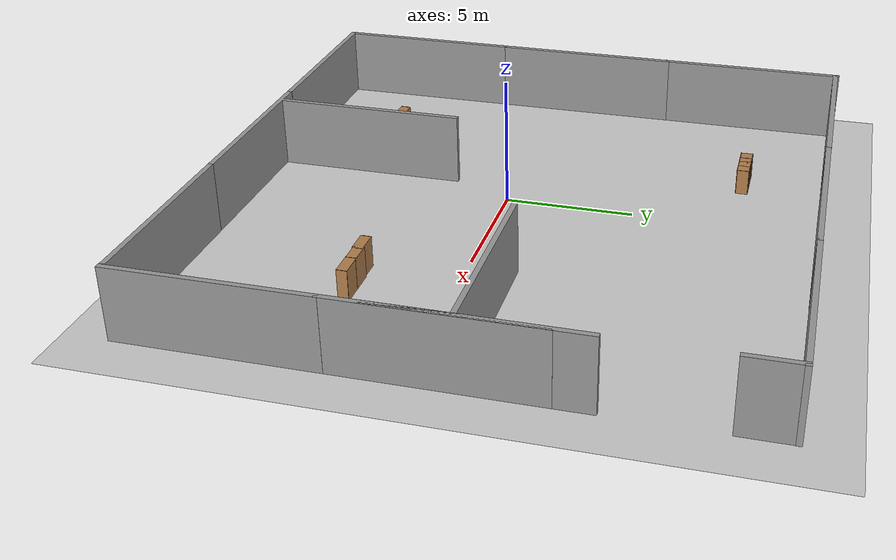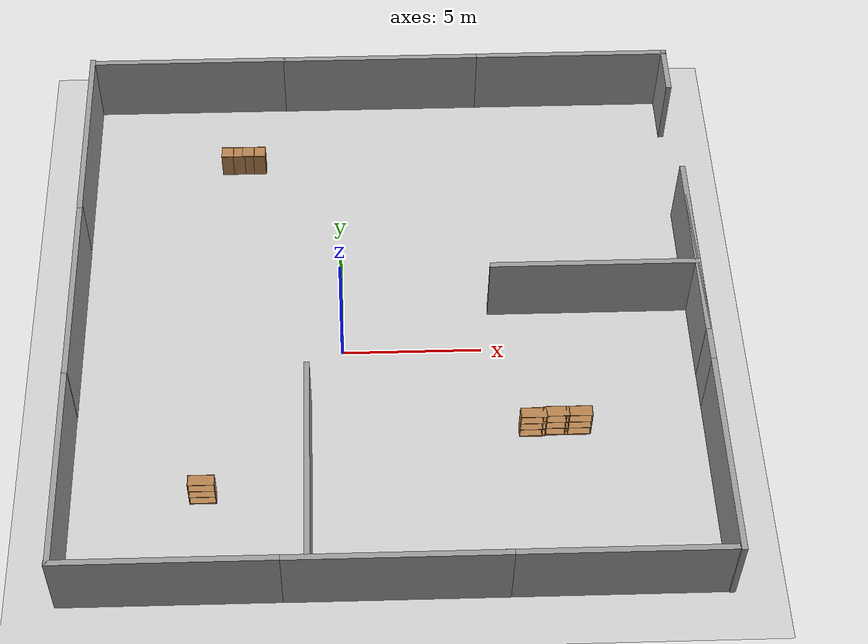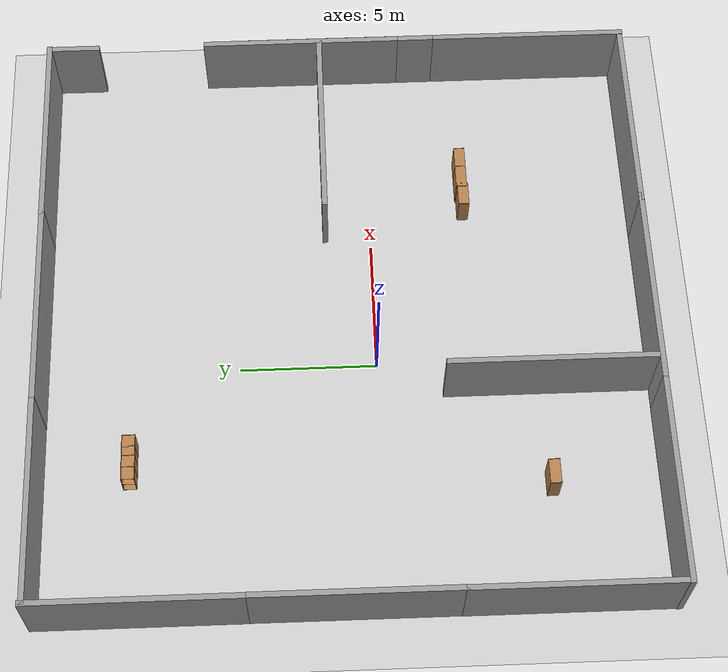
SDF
<sdf version="1.7">
 <world name="default">
  <light name="sun" type="directional">
   <pose>0 0 10 0 -0 0</pose>
   <diffuse>0.8 0.8 0.8 1</diffuse>
   <specular>0.2 0.2 0.2 1</specular>
   <attenuation>
    <range>1000</range>
    <constant>0.9</constant>
    <linear>0.01</linear>
    <quadratic>0.001</quadratic>
   </attenuation>
   <direction>-0.5 0.1 -0.9</direction>
   <spot><inner_angle>0</inner_angle><outer_angle>0</outer_angle><falloff>0</falloff></spot>
  </light>
  <model name="ground_plane">
   <static>1</static>
   <link name="link">
    <collision name="collision">
     <geometry><plane><normal>0 0 1</normal><size>100 100</size></plane></geometry>
     <surface>
      <contact><collide_bitmask>65535</collide_bitmask></contact>
      <friction><ode><mu>100</mu><mu2>50</mu2></ode></friction>
     </surface>
    </collision>
    <visual name="visual">
     <cast_shadows>0</cast_shadows>
     <geometry><plane><normal>0 0 1</normal><size>100 100</size></plane></geometry>
     <material>
      <script><uri>file://media/materials/scripts/gazebo.material</uri><name>Gazebo/Grey</name></script>
     </material>
    </visual>
   </link>
  </model>
  <gravity>0 0 -9.8</gravity>
  <magnetic_field>6e-06 2.3e-05 -4.2e-05</magnetic_field>
  <atmosphere type="adiabatic"/>
  <physics type="ode">
   <max_step_size>0.001</max_step_size>
   <real_time_factor>1</real_time_factor>
   <real_time_update_rate>1000</real_time_update_rate>
  </physics>
  <scene><ambient>0.4 0.4 0.4 1</ambient><background>0.7 0.7 0.7 1</background><shadows>1</shadows></scene>
  <spherical_coordinates>
   <surface_model>EARTH_WGS84</surface_model>
   <latitude_deg>0</latitude_deg>
   <longitude_deg>0</longitude_deg>
   <elevation>0</elevation>
   <heading_deg>0</heading_deg>
  </spherical_coordinates>
  <model name="grey_wall">
   <static>1</static>
   <link name="link">
    <pose>0 0 1.4 0 -0 0</pose>
    <collision name="collision"><geometry><box><size>7.5 0.2 2.8</size></box></geometry></collision>
    <visual name="visual">
     <cast_shadows>0</cast_shadows>
     <geometry><box><size>7.5 0.2 2.8</size></box></geometry>
     <material>
      <script>
       <uri>model://grey_wall/materials/scripts</uri>
       <uri>model://grey_wall/materials/textures</uri>
       <name>vrc/grey_wall</name>
      </script>
     </material>
    </visual>
   </link>
   <pose>-5.83386 -9.93266 0 0 -0 0</pose>
  </model>
  <model name="grey_wall_0">
   <static>1</static>
   <link name="link">
    <pose>0 0 1.4 0 -0 0</pose>
    <collision name="collision"><geometry><box><size>7.5 0.2 2.8</size></box></geometry></collision>
    <visual name="visual">
     <cast_shadows>0</cast_shadows>
     <geometry><box><size>7.5 0.2 2.8</size></box></geometry>
     <material>
      <script>
       <uri>model://grey_wall/materials/scripts</uri>
       <uri>model://grey_wall/materials/textures</uri>
       <name>vrc/grey_wall</name>
      </script>
     </material>
    </visual>
   </link>
   <pose>1.66132 -9.93778 0 0 -0 0</pose>
  </model>
  <model name="grey_wall_1">
   <static>1</static>
   <link name="link">
    <pose>0 0 1.4 0 -0 0</pose>
    <collision name="collision"><geometry><box><size>7.5 0.2 2.8</size></box></geometry></collision>
    <visual name="visual">
     <cast_shadows>0</cast_shadows>
     <geometry><box><size>7.5 0.2 2.8</size></box></geometry>
     <material>
      <script>
       <uri>model://grey_wall/materials/scripts</uri>
       <uri>model://grey_wall/materials/textures</uri>
       <name>vrc/grey_wall</name>
      </script>
     </material>
    </visual>
   </link>
   <pose>8.83643 -9.93626 0 0 -0 0</pose>
  </model>
  <model name="grey_wall_2">
   <static>1</static>
   <link name="link">
    <pose>0 0 1.4 0 -0 0</pose>
    <collision name="collision"><geometry><box><size>7.5 0.2 2.8</size></box></geometry></collision>
    <visual name="visual">
     <cast_shadows>0</cast_shadows>
     <geometry><box><size>7.5 0.2 2.8</size></box></geometry>
     <material>
      <script>
       <uri>model://grey_wall/materials/scripts</uri>
       <uri>model://grey_wall/materials/textures</uri>
       <name>vrc/grey_wall</name>
      </script>
     </material>
    </visual>
   </link>
   <pose>-5.76749 12.1097 0 0 -0 0</pose>
  </model>
  <model name="grey_wall_3">
   <static>1</static>
   <link name="link">
    <pose>0 0 1.4 0 -0 0</pose>
    <collision name="collision"><geometry><box><size>7.5 0.2 2.8</size></box></geometry></collision>
    <visual name="visual">
     <cast_shadows>0</cast_shadows>
     <geometry><box><size>7.5 0.2 2.8</size></box></geometry>
     <material>
      <script>
       <uri>model://grey_wall/materials/scripts</uri>
       <uri>model://grey_wall/materials/textures</uri>
       <name>vrc/grey_wall</name>
      </script>
     </material>
    </visual>
   </link>
   <pose>1.65848 12.1033 0 0 -0 0</pose>
  </model>
  <model name="grey_wall_4">
   <static>1</static>
   <link name="link">
    <pose>0 0 1.4 0 -0 0</pose>
    <collision name="collision"><geometry><box><size>7.5 0.2 2.8</size></box></geometry></collision>
    <visual name="visual">
     <cast_shadows>0</cast_shadows>
     <geometry><box><size>7.5 0.2 2.8</size></box></geometry>
     <material>
      <script>
       <uri>model://grey_wall/materials/scripts</uri>
       <uri>model://grey_wall/materials/textures</uri>
       <name>vrc/grey_wall</name>
      </script>
     </material>
    </visual>
   </link>
   <pose>9.03898 12.1093 0 0 -0 0</pose>
  </model>
  <model name="grey_wall_5">
   <static>1</static>
   <link name="link">
    <pose>0 0 1.4 0 -0 0</pose>
    <collision name="collision"><geometry><box><size>7.5 0.2 2.8</size></box></geometry></collision>
    <visual name="visual">
     <cast_shadows>0</cast_shadows>
     <geometry><box><size>7.5 0.2 2.8</size></box></geometry>
     <material>
      <script>
       <uri>model://grey_wall/materials/scripts</uri>
       <uri>model://grey_wall/materials/textures</uri>
       <name>vrc/grey_wall</name>
      </script>
     </material>
    </visual>
   </link>
   <pose>12.7043 2.42535 -0 0 -0 1.57075</pose>
  </model>
  <model name="grey_wall_6">
   <static>1</static>
   <link name="link">
    <pose>0 0 1.4 0 -0 0</pose>
    <collision name="collision"><geometry><box><size>7.5 0.2 2.8</size></box></geometry></collision>
    <visual name="visual">
     <cast_shadows>0</cast_shadows>
     <geometry><box><size>7.5 0.2 2.8</size></box></geometry>
     <material>
      <script>
       <uri>model://grey_wall/materials/scripts</uri>
       <uri>model://grey_wall/materials/textures</uri>
       <name>vrc/grey_wall</name>
      </script>
     </material>
    </visual>
   </link>
   <pose>12.708 1.05417 0 0 -0 1.57079</pose>
  </model>
  <model name="grey_wall_7">
   <static>1</static>
   <link name="link">
    <pose>0 0 1.4 0 -0 0</pose>
    <collision name="collision"><geometry><box><size>7.5 0.2 2.8</size></box></geometry></collision>
    <visual name="visual">
     <cast_shadows>0</cast_shadows>
     <geometry><box><size>7.5 0.2 2.8</size></box></geometry>
     <material>
      <script>
       <uri>model://grey_wall/materials/scripts</uri>
       <uri>model://grey_wall/materials/textures</uri>
       <name>vrc/grey_wall</name>
      </script>
     </material>
    </visual>
   </link>
   <pose>-9.46758 -6.23274 0 0 -0 1.57079</pose>
  </model>
  <model name="grey_wall_8">
   <static>1</static>
   <link name="link">
    <pose>0 0 1.4 0 -0 0</pose>
    <collision name="collision"><geometry><box><size>7.5 0.2 2.8</size></box></geometry></collision>
    <visual name="visual">
     <cast_shadows>0</cast_shadows>
     <geometry><box><size>7.5 0.2 2.8</size></box></geometry>
     <material>
      <script>
       <uri>model://grey_wall/materials/scripts</uri>
       <uri>model://grey_wall/materials/textures</uri>
       <name>vrc/grey_wall</name>
      </script>
     </material>
    </visual>
   </link>
   <pose>-9.45899 1.17139 0 0 -0 1.57079</pose>
  </model>
  <model name="grey_wall_9">
   <static>1</static>
   <link name="link">
    <pose>0 0 1.4 0 -0 0</pose>
    <collision name="collision"><geometry><box><size>7.5 0.2 2.8</size></box></geometry></collision>
    <visual name="visual">
     <cast_shadows>0</cast_shadows>
     <geometry><box><size>7.5 0.2 2.8</size></box></geometry>
     <material>
      <script>
       <uri>model://grey_wall/materials/scripts</uri>
       <uri>model://grey_wall/materials/textures</uri>
       <name>vrc/grey_wall</name>
      </script>
     </material>
    </visual>
   </link>
   <pose>-9.46541 8.51896 0 0 -0 1.57079</pose>
  </model>
  <model name="grey_wall_10">
   <static>1</static>
   <link name="link">
    <pose>0 0 1.4 0 -0 0</pose>
    <collision name="collision"><geometry><box><size>7.5 0.2 2.8</size></box></geometry></collision>
    <visual name="visual">
     <cast_shadows>0</cast_shadows>
     <geometry><box><size>7.5 0.2 2.8</size></box></geometry>
     <material>
      <script>
       <uri>model://grey_wall/materials/scripts</uri>
       <uri>model://grey_wall/materials/textures</uri>
       <name>vrc/grey_wall</name>
      </script>
     </material>
    </visual>
   </link>
   <pose>12.71 -6.30606 0 0 -0 1.57079</pose>
  </model>
  <model name="grey_wall_11">
   <static>1</static>
   <link name="link">
    <pose>0 0 1.4 0 -0 0</pose>
    <collision name="collision"><geometry><box><size>7.5 0.2 2.8</size></box></geometry></collision>
    <visual name="visual">
     <cast_shadows>0</cast_shadows>
     <geometry><box><size>7.5 0.2 2.8</size></box></geometry>
     <material>
      <script>
       <uri>model://grey_wall/materials/scripts</uri>
       <uri>model://grey_wall/materials/textures</uri>
       <name>vrc/grey_wall</name>
      </script>
     </material>
    </visual>
   </link>
   <pose>9.05696 1.71969 0 0 -0 0</pose>
  </model>
  <model name="grey_wall_12">
   <static>1</static>
   <link name="link">
    <pose>0 0 1.4 0 -0 0</pose>
    <collision name="collision"><geometry><box><size>7.5 0.2 2.8</size></box></geometry></collision>
    <visual name="visual">
     <cast_shadows>0</cast_shadows>
     <geometry><box><size>7.5 0.2 2.8</size></box></geometry>
     <material>
      <script>
       <uri>model://grey_wall/materials/scripts</uri>
       <uri>model://grey_wall/materials/textures</uri>
       <name>vrc/grey_wall</name>
      </script>
     </material>
    </visual>
   </link>
   <pose>-1.22257 -6.10105 0 0 -0 1.57079</pose>
  </model>
  <model name="bookshelf">
   <static>1</static>
   <link name="link">
    <inertial><mass>1</mass></inertial>
    <collision name="back">
     <pose>0 0.005 0.6 0 -0 0</pose>
     <geometry><box><size>0.9 0.01 1.2</size></box></geometry>
    </collision>
    <visual name="visual1">
     <pose>0 0.005 0.6 0 -0 0</pose>
     <geometry><box><size>0.9 0.01 1.2</size></box></geometry>
     <material>
      <script><uri>file://media/materials/scripts/gazebo.material</uri><name>Gazebo/Wood</name></script>
     </material>
    </visual>
    <collision name="left_side">
     <pose>0.45 -0.195 0.6 0 -0 0</pose>
     <geometry><box><size>0.02 0.4 1.2</size></box></geometry>
    </collision>
    <visual name="visual2">
     <pose>0.45 -0.195 0.6 0 -0 0</pose>
     <geometry><box><size>0.02 0.4 1.2</size></box></geometry>
     <material>
      <script><uri>file://media/materials/scripts/gazebo.material</uri><name>Gazebo/Wood</name></script>
     </material>
    </visual>
    <collision name="right_side">
     <pose>-0.45 -0.195 0.6 0 -0 0</pose>
     <geometry><box><size>0.02 0.4 1.2</size></box></geometry>
    </collision>
    <visual name="visual3">
     <pose>-0.45 -0.195 0.6 0 -0 0</pose>
     <geometry><box><size>0.02 0.4 1.2</size></box></geometry>
     <material>
      <script><uri>file://media/materials/scripts/gazebo.material</uri><name>Gazebo/Wood</name></script>
     </material>
    </visual>
    <collision name="bottom">
     <pose>0 -0.195 0.03 0 -0 0</pose>
     <geometry><box><size>0.88 0.4 0.06</size></box></geometry>
    </collision>
    <visual name="visual4">
     <pose>0 -0.195 0.03 0 -0 0</pose>
     <geometry><box><size>0.88 0.4 0.06</size></box></geometry>
     <material>
      <script><uri>file://media/materials/scripts/gazebo.material</uri><name>Gazebo/Wood</name></script>
     </material>
    </visual>
    <collision name="top">
     <pose>0 -0.195 1.19 0 -0 0</pose>
     <geometry><box><size>0.88 0.4 0.02</size></box></geometry>
    </collision>
    <visual name="visual5">
     <pose>0 -0.195 1.19 0 -0 0</pose>
     <geometry><box><size>0.88 0.4 0.02</size></box></geometry>
     <material>
      <script><uri>file://media/materials/scripts/gazebo.material</uri><name>Gazebo/Wood</name></script>
     </material>
    </visual>
    <collision name="low_shelf">
     <pose>0 -0.195 0.43 0 -0 0</pose>
     <geometry><box><size>0.88 0.4 0.02</size></box></geometry>
    </collision>
    <visual name="visual6">
     <pose>0 -0.195 0.43 0 -0 0</pose>
     <geometry><box><size>0.88 0.4 0.02</size></box></geometry>
     <material>
      <script><uri>file://media/materials/scripts/gazebo.material</uri><name>Gazebo/Wood</name></script>
     </material>
    </visual>
    <collision name="high_shelf">
     <pose>0 -0.195 0.8 0 -0 0</pose>
     <geometry><box><size>0.88 0.4 0.02</size></box></geometry>
    </collision>
    <visual name="visual7">
     <pose>0 -0.195 0.8 0 -0 0</pose>
     <geometry><box><size>0.88 0.4 0.02</size></box></geometry>
     <material>
      <script><uri>file://media/materials/scripts/gazebo.material</uri><name>Gazebo/Wood</name></script>
     </material>
    </visual>
   </link>
   <pose>-4.83468 -5.79554 0 0 -0 0</pose>
  </model>
  <model name="bookshelf_0">
   <static>1</static>
   <link name="link">
    <inertial><mass>1</mass></inertial>
    <collision name="back">
     <pose>0 0.005 0.6 0 -0 0</pose>
     <geometry><box><size>0.9 0.01 1.2</size></box></geometry>
    </collision>
    <visual name="visual1">
     <pose>0 0.005 0.6 0 -0 0</pose>
     <geometry><box><size>0.9 0.01 1.2</size></box></geometry>
     <material>
      <script><uri>file://media/materials/scripts/gazebo.material</uri><name>Gazebo/Wood</name></script>
     </material>
    </visual>
    <collision name="left_side">
     <pose>0.45 -0.195 0.6 0 -0 0</pose>
     <geometry><box><size>0.02 0.4 1.2</size></box></geometry>
    </collision>
    <visual name="visual2">
     <pose>0.45 -0.195 0.6 0 -0 0</pose>
     <geometry><box><size>0.02 0.4 1.2</size></box></geometry>
     <material>
      <script><uri>file://media/materials/scripts/gazebo.material</uri><name>Gazebo/Wood</name></script>
     </material>
    </visual>
    <collision name="right_side">
     <pose>-0.45 -0.195 0.6 0 -0 0</pose>
     <geometry><box><size>0.02 0.4 1.2</size></box></geometry>
    </collision>
    <visual name="visual3">
     <pose>-0.45 -0.195 0.6 0 -0 0</pose>
     <geometry><box><size>0.02 0.4 1.2</size></box></geometry>
     <material>
      <script><uri>file://media/materials/scripts/gazebo.material</uri><name>Gazebo/Wood</name></script>
     </material>
    </visual>
    <collision name="bottom">
     <pose>0 -0.195 0.03 0 -0 0</pose>
     <geometry><box><size>0.88 0.4 0.06</size></box></geometry>
    </collision>
    <visual name="visual4">
     <pose>0 -0.195 0.03 0 -0 0</pose>
     <geometry><box><size>0.88 0.4 0.06</size></box></geometry>
     <material>
      <script><uri>file://media/materials/scripts/gazebo.material</uri><name>Gazebo/Wood</name></script>
     </material>
    </visual>
    <collision name="top">
     <pose>0 -0.195 1.19 0 -0 0</pose>
     <geometry><box><size>0.88 0.4 0.02</size></box></geometry>
    </collision>
    <visual name="visual5">
     <pose>0 -0.195 1.19 0 -0 0</pose>
     <geometry><box><size>0.88 0.4 0.02</size></box></geometry>
     <material>
      <script><uri>file://media/materials/scripts/gazebo.material</uri><name>Gazebo/Wood</name></script>
     </material>
    </visual>
    <collision name="low_shelf">
     <pose>0 -0.195 0.43 0 -0 0</pose>
     <geometry><box><size>0.88 0.4 0.02</size></box></geometry>
    </collision>
    <visual name="visual6">
     <pose>0 -0.195 0.43 0 -0 0</pose>
     <geometry><box><size>0.88 0.4 0.02</size></box></geometry>
     <material>
      <script><uri>file://media/materials/scripts/gazebo.material</uri><name>Gazebo/Wood</name></script>
     </material>
    </visual>
    <collision name="high_shelf">
     <pose>0 -0.195 0.8 0 -0 0</pose>
     <geometry><box><size>0.88 0.4 0.02</size></box></geometry>
    </collision>
    <visual name="visual7">
     <pose>0 -0.195 0.8 0 -0 0</pose>
     <geometry><box><size>0.88 0.4 0.02</size></box></geometry>
     <material>
      <script><uri>file://media/materials/scripts/gazebo.material</uri><name>Gazebo/Wood</name></script>
     </material>
    </visual>
   </link>
   <pose>8.15256 -3.32814 0 0 -0 0</pose>
  </model>
  <model name="bookshelf_1">
   <static>1</static>
   <link name="link">
    <inertial><mass>1</mass></inertial>
    <collision name="back">
     <pose>0 0.005 0.6 0 -0 0</pose>
     <geometry><box><size>0.9 0.01 1.2</size></box></geometry>
    </collision>
    <visual name="visual1">
     <pose>0 0.005 0.6 0 -0 0</pose>
     <geometry><box><size>0.9 0.01 1.2</size></box></geometry>
     <material>
      <script><uri>file://media/materials/scripts/gazebo.material</uri><name>Gazebo/Wood</name></script>
     </material>
    </visual>
    <collision name="left_side">
     <pose>0.45 -0.195 0.6 0 -0 0</pose>
     <geometry><box><size>0.02 0.4 1.2</size></box></geometry>
    </collision>
    <visual name="visual2">
     <pose>0.45 -0.195 0.6 0 -0 0</pose>
     <geometry><box><size>0.02 0.4 1.2</size></box></geometry>
     <material>
      <script><uri>file://media/materials/scripts/gazebo.material</uri><name>Gazebo/Wood</name></script>
     </material>
    </visual>
    <collision name="right_side">
     <pose>-0.45 -0.195 0.6 0 -0 0</pose>
     <geometry><box><size>0.02 0.4 1.2</size></box></geometry>
    </collision>
    <visual name="visual3">
     <pose>-0.45 -0.195 0.6 0 -0 0</pose>
     <geometry><box><size>0.02 0.4 1.2</size></box></geometry>
     <material>
      <script><uri>file://media/materials/scripts/gazebo.material</uri><name>Gazebo/Wood</name></script>
     </material>
    </visual>
    <collision name="bottom">
     <pose>0 -0.195 0.03 0 -0 0</pose>
     <geometry><box><size>0.88 0.4 0.06</size></box></geometry>
    </collision>
    <visual name="visual4">
     <pose>0 -0.195 0.03 0 -0 0</pose>
     <geometry><box><size>0.88 0.4 0.06</size></box></geometry>
     <material>
      <script><uri>file://media/materials/scripts/gazebo.material</uri><name>Gazebo/Wood</name></script>
     </material>
    </visual>
    <collision name="top">
     <pose>0 -0.195 1.19 0 -0 0</pose>
     <geometry><box><size>0.88 0.4 0.02</size></box></geometry>
    </collision>
    <visual name="visual5">
     <pose>0 -0.195 1.19 0 -0 0</pose>
     <geometry><box><size>0.88 0.4 0.02</size></box></geometry>
     <material>
      <script><uri>file://media/materials/scripts/gazebo.material</uri><name>Gazebo/Wood</name></script>
     </material>
    </visual>
    <collision name="low_shelf">
     <pose>0 -0.195 0.43 0 -0 0</pose>
     <geometry><box><size>0.88 0.4 0.02</size></box></geometry>
    </collision>
    <visual name="visual6">
     <pose>0 -0.195 0.43 0 -0 0</pose>
     <geometry><box><size>0.88 0.4 0.02</size></box></geometry>
     <material>
      <script><uri>file://media/materials/scripts/gazebo.material</uri><name>Gazebo/Wood</name></script>
     </material>
    </visual>
    <collision name="high_shelf">
     <pose>0 -0.195 0.8 0 -0 0</pose>
     <geometry><box><size>0.88 0.4 0.02</size></box></geometry>
    </collision>
    <visual name="visual7">
     <pose>0 -0.195 0.8 0 -0 0</pose>
     <geometry><box><size>0.88 0.4 0.02</size></box></geometry>
     <material>
      <script><uri>file://media/materials/scripts/gazebo.material</uri><name>Gazebo/Wood</name></script>
     </material>
    </visual>
   </link>
   <pose>7.35382 -3.32558 0 0 -0 0</pose>
  </model>
  <model name="bookshelf_2">
   <static>1</static>
   <link name="link">
    <inertial><mass>1</mass></inertial>
    <collision name="back">
     <pose>0 0.005 0.6 0 -0 0</pose>
     <geometry><box><size>0.9 0.01 1.2</size></box></geometry>
    </collision>
    <visual name="visual1">
     <pose>0 0.005 0.6 0 -0 0</pose>
     <geometry><box><size>0.9 0.01 1.2</size></box></geometry>
     <material>
      <script><uri>file://media/materials/scripts/gazebo.material</uri><name>Gazebo/Wood</name></script>
     </material>
    </visual>
    <collision name="left_side">
     <pose>0.45 -0.195 0.6 0 -0 0</pose>
     <geometry><box><size>0.02 0.4 1.2</size></box></geometry>
    </collision>
    <visual name="visual2">
     <pose>0.45 -0.195 0.6 0 -0 0</pose>
     <geometry><box><size>0.02 0.4 1.2</size></box></geometry>
     <material>
      <script><uri>file://media/materials/scripts/gazebo.material</uri><name>Gazebo/Wood</name></script>
     </material>
    </visual>
    <collision name="right_side">
     <pose>-0.45 -0.195 0.6 0 -0 0</pose>
     <geometry><box><size>0.02 0.4 1.2</size></box></geometry>
    </collision>
    <visual name="visual3">
     <pose>-0.45 -0.195 0.6 0 -0 0</pose>
     <geometry><box><size>0.02 0.4 1.2</size></box></geometry>
     <material>
      <script><uri>file://media/materials/scripts/gazebo.material</uri><name>Gazebo/Wood</name></script>
     </material>
    </visual>
    <collision name="bottom">
     <pose>0 -0.195 0.03 0 -0 0</pose>
     <geometry><box><size>0.88 0.4 0.06</size></box></geometry>
    </collision>
    <visual name="visual4">
     <pose>0 -0.195 0.03 0 -0 0</pose>
     <geometry><box><size>0.88 0.4 0.06</size></box></geometry>
     <material>
      <script><uri>file://media/materials/scripts/gazebo.material</uri><name>Gazebo/Wood</name></script>
     </material>
    </visual>
    <collision name="top">
     <pose>0 -0.195 1.19 0 -0 0</pose>
     <geometry><box><size>0.88 0.4 0.02</size></box></geometry>
    </collision>
    <visual name="visual5">
     <pose>0 -0.195 1.19 0 -0 0</pose>
     <geometry><box><size>0.88 0.4 0.02</size></box></geometry>
     <material>
      <script><uri>file://media/materials/scripts/gazebo.material</uri><name>Gazebo/Wood</name></script>
     </material>
    </visual>
    <collision name="low_shelf">
     <pose>0 -0.195 0.43 0 -0 0</pose>
     <geometry><box><size>0.88 0.4 0.02</size></box></geometry>
    </collision>
    <visual name="visual6">
     <pose>0 -0.195 0.43 0 -0 0</pose>
     <geometry><box><size>0.88 0.4 0.02</size></box></geometry>
     <material>
      <script><uri>file://media/materials/scripts/gazebo.material</uri><name>Gazebo/Wood</name></script>
     </material>
    </visual>
    <collision name="high_shelf">
     <pose>0 -0.195 0.8 0 -0 0</pose>
     <geometry><box><size>0.88 0.4 0.02</size></box></geometry>
    </collision>
    <visual name="visual7">
     <pose>0 -0.195 0.8 0 -0 0</pose>
     <geometry><box><size>0.88 0.4 0.02</size></box></geometry>
     <material>
      <script><uri>file://media/materials/scripts/gazebo.material</uri><name>Gazebo/Wood</name></script>
     </material>
    </visual>
   </link>
   <pose>6.57534 -3.36346 0 0 -0 0</pose>
  </model>
  <model name="cabinet">
   <static>1</static>
   <link name="cabinet_bottom_plate">
    <inertial>
     <pose>0 0 -1 0 -0 0</pose>
     <inertia><ixx>2.05</ixx><ixy>0</ixy><ixz>0</ixz><iyy>2.05</iyy><iyz>0</iyz><izz>2.05</izz></inertia>
     <mass>25</mass>
    </inertial>
    <collision name="cabinet_bottom_plate_geom">
     <pose>0 0 0.01 0 -0 0</pose>
     <geometry><box><size>0.45 0.45 0.02</size></box></geometry>
    </collision>
    <visual name="cabinet_bottom_plate_geom_visual">
     <pose>0 0 0.01 0 -0 0</pose>
     <geometry><box><size>0.45 0.45 0.02</size></box></geometry>
     <material>
      <script><uri>file://media/materials/scripts/gazebo.material</uri><name>Gazebo/Wood</name></script>
     </material>
    </visual>
    <collision name="cabinet_bottom_plate_geom_cabinet_back_plate">
     <pose>0.235 0 0.51 0 -0 0</pose>
     <geometry><box><size>0.02 0.45 1.02</size></box></geometry>
    </collision>
    <visual name="cabinet_bottom_plate_geom_cabinet_back_plate_visual">
     <pose>0.235 0 0.51 0 -0 0</pose>
     <geometry><box><size>0.02 0.45 1.02</size></box></geometry>
     <material>
      <script><uri>file://media/materials/scripts/gazebo.material</uri><name>Gazebo/Wood</name></script>
     </material>
    </visual>
    <collision name="cabinet_bottom_plate_geom_cabinet_left_plate">
     <pose>0 0.235 0.51 0 -0 0</pose>
     <geometry><box><size>0.45 0.02 1.02</size></box></geometry>
    </collision>
    <visual name="cabinet_bottom_plate_geom_cabinet_left_plate_visual">
     <pose>0 0.235 0.51 0 -0 0</pose>
     <geometry><box><size>0.45 0.02 1.02</size></box></geometry>
     <material>
      <script><uri>file://media/materials/scripts/gazebo.material</uri><name>Gazebo/Wood</name></script>
     </material>
    </visual>
    <collision name="cabinet_bottom_plate_geom_cabinet_middle_plate">
     <pose>0 0 0.51 0 -0 0</pose>
     <geometry><box><size>0.45 0.45 0.02</size></box></geometry>
    </collision>
    <visual name="cabinet_bottom_plate_geom_cabinet_middle_plate_visual">
     <pose>0 0 0.51 0 -0 0</pose>
     <geometry><box><size>0.45 0.45 0.02</size></box></geometry>
     <material>
      <script><uri>file://media/materials/scripts/gazebo.material</uri><name>Gazebo/Wood</name></script>
     </material>
    </visual>
    <collision name="cabinet_bottom_plate_geom_cabinet_right_plate">
     <pose>0 -0.235 0.51 0 -0 0</pose>
     <geometry><box><size>0.45 0.02 1.02</size></box></geometry>
    </collision>
    <visual name="cabinet_bottom_plate_geom_cabinet_right_plate_visual">
     <pose>0 -0.235 0.51 0 -0 0</pose>
     <geometry><box><size>0.45 0.02 1.02</size></box></geometry>
     <material>
      <script><uri>file://media/materials/scripts/gazebo.material</uri><name>Gazebo/Wood</name></script>
     </material>
    </visual>
    <collision name="cabinet_bottom_plate_geom_cabinet_top_plate">
     <pose>0 0 1.01 0 -0 0</pose>
     <geometry><box><size>0.45 0.45 0.02</size></box></geometry>
    </collision>
    <visual name="cabinet_bottom_plate_geom_cabinet_top_plate_visual">
     <pose>0 0 1.01 0 -0 0</pose>
     <geometry><box><size>0.45 0.45 0.02</size></box></geometry>
     <material>
      <script><uri>file://media/materials/scripts/gazebo.material</uri><name>Gazebo/Wood</name></script>
     </material>
    </visual>
   </link>
   <pose>-3.08482 8.9366 0 0 -0 0</pose>
  </model>
  <model name="cabinet_0">
   <static>1</static>
   <link name="cabinet_bottom_plate">
    <inertial>
     <pose>0 0 -1 0 -0 0</pose>
     <inertia><ixx>2.05</ixx><ixy>0</ixy><ixz>0</ixz><iyy>2.05</iyy><iyz>0</iyz><izz>2.05</izz></inertia>
     <mass>25</mass>
    </inertial>
    <collision name="cabinet_bottom_plate_geom">
     <pose>0 0 0.01 0 -0 0</pose>
     <geometry><box><size>0.45 0.45 0.02</size></box></geometry>
    </collision>
    <visual name="cabinet_bottom_plate_geom_visual">
     <pose>0 0 0.01 0 -0 0</pose>
     <geometry><box><size>0.45 0.45 0.02</size></box></geometry>
     <material>
      <script><uri>file://media/materials/scripts/gazebo.material</uri><name>Gazebo/Wood</name></script>
     </material>
    </visual>
    <collision name="cabinet_bottom_plate_geom_cabinet_back_plate">
     <pose>0.235 0 0.51 0 -0 0</pose>
     <geometry><box><size>0.02 0.45 1.02</size></box></geometry>
    </collision>
    <visual name="cabinet_bottom_plate_geom_cabinet_back_plate_visual">
     <pose>0.235 0 0.51 0 -0 0</pose>
     <geometry><box><size>0.02 0.45 1.02</size></box></geometry>
     <material>
      <script><uri>file://media/materials/scripts/gazebo.material</uri><name>Gazebo/Wood</name></script>
     </material>
    </visual>
    <collision name="cabinet_bottom_plate_geom_cabinet_left_plate">
     <pose>0 0.235 0.51 0 -0 0</pose>
     <geometry><box><size>0.45 0.02 1.02</size></box></geometry>
    </collision>
    <visual name="cabinet_bottom_plate_geom_cabinet_left_plate_visual">
     <pose>0 0.235 0.51 0 -0 0</pose>
     <geometry><box><size>0.45 0.02 1.02</size></box></geometry>
     <material>
      <script><uri>file://media/materials/scripts/gazebo.material</uri><name>Gazebo/Wood</name></script>
     </material>
    </visual>
    <collision name="cabinet_bottom_plate_geom_cabinet_middle_plate">
     <pose>0 0 0.51 0 -0 0</pose>
     <geometry><box><size>0.45 0.45 0.02</size></box></geometry>
    </collision>
    <visual name="cabinet_bottom_plate_geom_cabinet_middle_plate_visual">
     <pose>0 0 0.51 0 -0 0</pose>
     <geometry><box><size>0.45 0.45 0.02</size></box></geometry>
     <material>
      <script><uri>file://media/materials/scripts/gazebo.material</uri><name>Gazebo/Wood</name></script>
     </material>
    </visual>
    <collision name="cabinet_bottom_plate_geom_cabinet_right_plate">
     <pose>0 -0.235 0.51 0 -0 0</pose>
     <geometry><box><size>0.45 0.02 1.02</size></box></geometry>
    </collision>
    <visual name="cabinet_bottom_plate_geom_cabinet_right_plate_visual">
     <pose>0 -0.235 0.51 0 -0 0</pose>
     <geometry><box><size>0.45 0.02 1.02</size></box></geometry>
     <material>
      <script><uri>file://media/materials/scripts/gazebo.material</uri><name>Gazebo/Wood</name></script>
     </material>
    </visual>
    <collision name="cabinet_bottom_plate_geom_cabinet_top_plate">
     <pose>0 0 1.01 0 -0 0</pose>
     <geometry><box><size>0.45 0.45 0.02</size></box></geometry>
    </collision>
    <visual name="cabinet_bottom_plate_geom_cabinet_top_plate_visual">
     <pose>0 0 1.01 0 -0 0</pose>
     <geometry><box><size>0.45 0.45 0.02</size></box></geometry>
     <material>
      <script><uri>file://media/materials/scripts/gazebo.material</uri><name>Gazebo/Wood</name></script>
     </material>
    </visual>
   </link>
   <pose>-3.50603 8.93885 0 0 -0 0</pose>
  </model>
  <model name="cabinet_1">
   <static>1</static>
   <link name="cabinet_bottom_plate">
    <inertial>
     <pose>0 0 -1 0 -0 0</pose>
     <inertia><ixx>2.05</ixx><ixy>0</ixy><ixz>0</ixz><iyy>2.05</iyy><iyz>0</iyz><izz>2.05</izz></inertia>
     <mass>25</mass>
    </inertial>
    <collision name="cabinet_bottom_plate_geom">
     <pose>0 0 0.01 0 -0 0</pose>
     <geometry><box><size>0.45 0.45 0.02</size></box></geometry>
    </collision>
    <visual name="cabinet_bottom_plate_geom_visual">
     <pose>0 0 0.01 0 -0 0</pose>
     <geometry><box><size>0.45 0.45 0.02</size></box></geometry>
     <material>
      <script><uri>file://media/materials/scripts/gazebo.material</uri><name>Gazebo/Wood</name></script>
     </material>
    </visual>
    <collision name="cabinet_bottom_plate_geom_cabinet_back_plate">
     <pose>0.235 0 0.51 0 -0 0</pose>
     <geometry><box><size>0.02 0.45 1.02</size></box></geometry>
    </collision>
    <visual name="cabinet_bottom_plate_geom_cabinet_back_plate_visual">
     <pose>0.235 0 0.51 0 -0 0</pose>
     <geometry><box><size>0.02 0.45 1.02</size></box></geometry>
     <material>
      <script><uri>file://media/materials/scripts/gazebo.material</uri><name>Gazebo/Wood</name></script>
     </material>
    </visual>
    <collision name="cabinet_bottom_plate_geom_cabinet_left_plate">
     <pose>0 0.235 0.51 0 -0 0</pose>
     <geometry><box><size>0.45 0.02 1.02</size></box></geometry>
    </collision>
    <visual name="cabinet_bottom_plate_geom_cabinet_left_plate_visual">
     <pose>0 0.235 0.51 0 -0 0</pose>
     <geometry><box><size>0.45 0.02 1.02</size></box></geometry>
     <material>
      <script><uri>file://media/materials/scripts/gazebo.material</uri><name>Gazebo/Wood</name></script>
     </material>
    </visual>
    <collision name="cabinet_bottom_plate_geom_cabinet_middle_plate">
     <pose>0 0 0.51 0 -0 0</pose>
     <geometry><box><size>0.45 0.45 0.02</size></box></geometry>
    </collision>
    <visual name="cabinet_bottom_plate_geom_cabinet_middle_plate_visual">
     <pose>0 0 0.51 0 -0 0</pose>
     <geometry><box><size>0.45 0.45 0.02</size></box></geometry>
     <material>
      <script><uri>file://media/materials/scripts/gazebo.material</uri><name>Gazebo/Wood</name></script>
     </material>
    </visual>
    <collision name="cabinet_bottom_plate_geom_cabinet_right_plate">
     <pose>0 -0.235 0.51 0 -0 0</pose>
     <geometry><box><size>0.45 0.02 1.02</size></box></geometry>
    </collision>
    <visual name="cabinet_bottom_plate_geom_cabinet_right_plate_visual">
     <pose>0 -0.235 0.51 0 -0 0</pose>
     <geometry><box><size>0.45 0.02 1.02</size></box></geometry>
     <material>
      <script><uri>file://media/materials/scripts/gazebo.material</uri><name>Gazebo/Wood</name></script>
     </material>
    </visual>
    <collision name="cabinet_bottom_plate_geom_cabinet_top_plate">
     <pose>0 0 1.01 0 -0 0</pose>
     <geometry><box><size>0.45 0.45 0.02</size></box></geometry>
    </collision>
    <visual name="cabinet_bottom_plate_geom_cabinet_top_plate_visual">
     <pose>0 0 1.01 0 -0 0</pose>
     <geometry><box><size>0.45 0.45 0.02</size></box></geometry>
     <material>
      <script><uri>file://media/materials/scripts/gazebo.material</uri><name>Gazebo/Wood</name></script>
     </material>
    </visual>
   </link>
   <pose>-3.86239 8.93877 0 0 -0 0</pose>
  </model>
  <model name="cabinet_2">
   <static>1</static>
   <link name="cabinet_bottom_plate">
    <inertial>
     <pose>0 0 -1 0 -0 0</pose>
     <inertia><ixx>2.05</ixx><ixy>0</ixy><ixz>0</ixz><iyy>2.05</iyy><iyz>0</iyz><izz>2.05</izz></inertia>
     <mass>25</mass>
    </inertial>
    <collision name="cabinet_bottom_plate_geom">
     <pose>0 0 0.01 0 -0 0</pose>
     <geometry><box><size>0.45 0.45 0.02</size></box></geometry>
    </collision>
    <visual name="cabinet_bottom_plate_geom_visual">
     <pose>0 0 0.01 0 -0 0</pose>
     <geometry><box><size>0.45 0.45 0.02</size></box></geometry>
     <material>
      <script><uri>file://media/materials/scripts/gazebo.material</uri><name>Gazebo/Wood</name></script>
     </material>
    </visual>
    <collision name="cabinet_bottom_plate_geom_cabinet_back_plate">
     <pose>0.235 0 0.51 0 -0 0</pose>
     <geometry><box><size>0.02 0.45 1.02</size></box></geometry>
    </collision>
    <visual name="cabinet_bottom_plate_geom_cabinet_back_plate_visual">
     <pose>0.235 0 0.51 0 -0 0</pose>
     <geometry><box><size>0.02 0.45 1.02</size></box></geometry>
     <material>
      <script><uri>file://media/materials/scripts/gazebo.material</uri><name>Gazebo/Wood</name></script>
     </material>
    </visual>
    <collision name="cabinet_bottom_plate_geom_cabinet_left_plate">
     <pose>0 0.235 0.51 0 -0 0</pose>
     <geometry><box><size>0.45 0.02 1.02</size></box></geometry>
    </collision>
    <visual name="cabinet_bottom_plate_geom_cabinet_left_plate_visual">
     <pose>0 0.235 0.51 0 -0 0</pose>
     <geometry><box><size>0.45 0.02 1.02</size></box></geometry>
     <material>
      <script><uri>file://media/materials/scripts/gazebo.material</uri><name>Gazebo/Wood</name></script>
     </material>
    </visual>
    <collision name="cabinet_bottom_plate_geom_cabinet_middle_plate">
     <pose>0 0 0.51 0 -0 0</pose>
     <geometry><box><size>0.45 0.45 0.02</size></box></geometry>
    </collision>
    <visual name="cabinet_bottom_plate_geom_cabinet_middle_plate_visual">
     <pose>0 0 0.51 0 -0 0</pose>
     <geometry><box><size>0.45 0.45 0.02</size></box></geometry>
     <material>
      <script><uri>file://media/materials/scripts/gazebo.material</uri><name>Gazebo/Wood</name></script>
     </material>
    </visual>
    <collision name="cabinet_bottom_plate_geom_cabinet_right_plate">
     <pose>0 -0.235 0.51 0 -0 0</pose>
     <geometry><box><size>0.45 0.02 1.02</size></box></geometry>
    </collision>
    <visual name="cabinet_bottom_plate_geom_cabinet_right_plate_visual">
     <pose>0 -0.235 0.51 0 -0 0</pose>
     <geometry><box><size>0.45 0.02 1.02</size></box></geometry>
     <material>
      <script><uri>file://media/materials/scripts/gazebo.material</uri><name>Gazebo/Wood</name></script>
     </material>
    </visual>
    <collision name="cabinet_bottom_plate_geom_cabinet_top_plate">
     <pose>0 0 1.01 0 -0 0</pose>
     <geometry><box><size>0.45 0.45 0.02</size></box></geometry>
    </collision>
    <visual name="cabinet_bottom_plate_geom_cabinet_top_plate_visual">
     <pose>0 0 1.01 0 -0 0</pose>
     <geometry><box><size>0.45 0.45 0.02</size></box></geometry>
     <material>
      <script><uri>file://media/materials/scripts/gazebo.material</uri><name>Gazebo/Wood</name></script>
     </material>
    </visual>
   </link>
   <pose>-4.29607 8.94158 0 0 -0 0</pose>
  </model>
  <model name="grey_wall_small">
   <link name="link">
    <pose>0 0 1.4 0 -0 0</pose>
    <inertial>
     <mass>1</mass>
     <inertia><ixx>1</ixx><ixy>0</ixy><ixz>0</ixz><iyy>1</iyy><iyz>0</iyz><izz>1</izz></inertia>
    </inertial>
    <visual name="visual">
     <cast_shadows>0</cast_shadows>
     <geometry><box><size>2 0.2 2.8</size></box></geometry>
     <material>
      <script>
       <uri>model://grey_wall/materials/scripts</uri>
       <uri>model://grey_wall/materials/textures</uri>
       <name>vrc/grey_wall</name>
      </script>
      <shader type="pixel"><normal_map>__default__</normal_map></shader>
      <ambient>1 1 1 1</ambient>
      <diffuse>1 1 1 1</diffuse>
      <specular>0 0 0 1</specular>
      <emissive>0 0 0 1</emissive>
     </material>
    </visual>
    <collision name="collision">
     <geometry><box><size>2 0.2 2.8</size></box></geometry>
     <surface>
      <friction>
       <ode><mu>1</mu><mu2>1</mu2><fdir1>0 0 0</fdir1><slip1>0</slip1><slip2>0</slip2></ode>
       <torsional>
        <coefficient>1</coefficient>
        <patch_radius>0</patch_radius>
        <surface_radius>0</surface_radius>
        <use_patch_radius>1</use_patch_radius>
        <ode><slip>0</slip></ode>
       </torsional>
      </friction>
      <bounce><restitution_coefficient>0</restitution_coefficient><threshold>1e+06</threshold></bounce>
      <contact>
       <collide_without_contact>0</collide_without_contact>
       <collide_without_contact_bitmask>1</collide_without_contact_bitmask>
       <collide_bitmask>1</collide_bitmask>
       <ode>
        <soft_cfm>0</soft_cfm>
        <soft_erp>0.2</soft_erp>
        <kp>1e+13</kp>
        <kd>1</kd>
        <max_vel>0.01</max_vel>
        <min_depth>0</min_depth>
       </ode>
       <bullet>
        <split_impulse>1</split_impulse>
        <split_impulse_penetration_threshold>-0.01</split_impulse_penetration_threshold>
        <soft_cfm>0</soft_cfm>
        <soft_erp>0.2</soft_erp>
        <kp>1e+13</kp>
        <kd>1</kd>
       </bullet>
      </contact>
     </surface>
    </collision>
   </link>
   <static>1</static>
   <pose>12.676 11.2003 0 0 -0 1.57079</pose>
  </model>
 </world>
</sdf>
